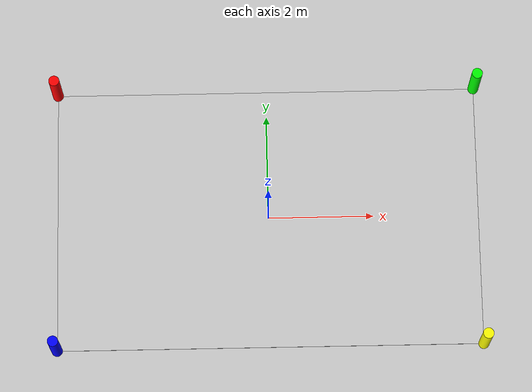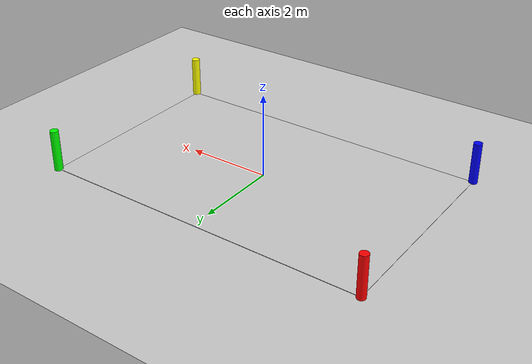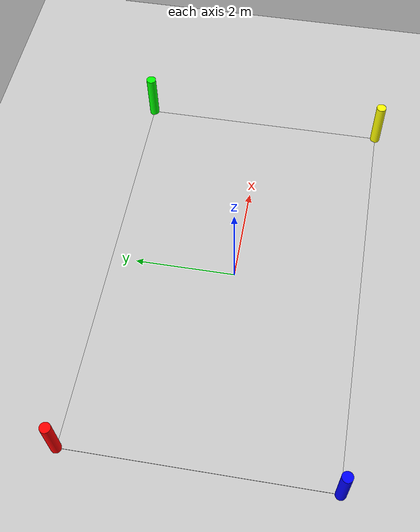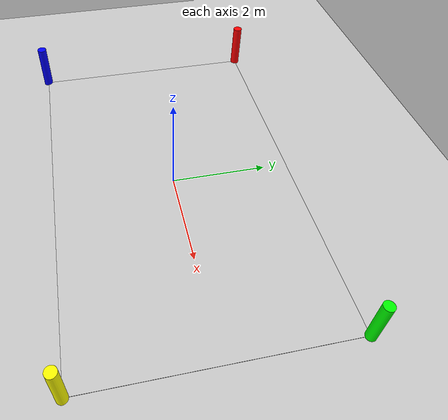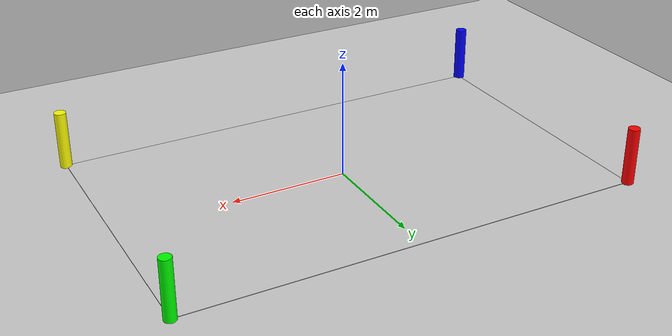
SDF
<?xml version="1.0" ?>
<sdf version="1.6">
  <world name="default">

    <!-- Include Ground Plane -->
    <include>
      <uri>model://ground_plane</uri>
    </include>

    <!-- Include Sun -->
    <include>
      <uri>model://sun</uri>
    </include>

    <!-- Room (for visualization purposes, just a floor box) -->
    <model name="room_floor">
      <static>true</static>
      <link name="floor_link">
        <collision name="collision">
          <geometry>
            <box>
              <size>8 5 0.01</size> <!-- 8m x 5m room -->
            </box>
          </geometry>
        </collision>
        <visual name="visual">
          <geometry>
            <box>
              <size>8 5 0.01</size>
            </box>
          </geometry>
          <material>
            <ambient>0.8 0.8 0.8 1</ambient>
            <diffuse>0.8 0.8 0.8 1</diffuse>
          </material>
        </visual>
      </link>
      <pose>0 0 0.005 0 0 0</pose> <!-- Slightly above ground -->
    </model>

    <!-- Anchor at Front-Left Corner -->
    <model name="anchor_1">
      <static>true</static>
      <link name="link">
        <visual name="visual">
          <geometry>
            <cylinder>
              <radius>0.1</radius>
              <length>1</length>
            </cylinder>
          </geometry>
          <material>
            <ambient>1 0 0 1</ambient>
          </material>
        </visual>
      </link>
      <pose>-4 2.5 0.5 0 0 0</pose>
    </model>

    <!-- Anchor at Front-Right Corner -->
    <model name="anchor_2">
      <static>true</static>
      <link name="link">
        <visual name="visual">
          <geometry>
            <cylinder>
              <radius>0.1</radius>
              <length>1</length>
            </cylinder>
          </geometry>
          <material>
            <ambient>0 1 0 1</ambient>
          </material>
        </visual>
      </link>
      <pose>4 2.5 0.5 0 0 0</pose>
    </model>

    <!-- Anchor at Rear-Left Corner -->
    <model name="anchor_3">
      <static>true</static>
      <link name="link">
        <visual name="visual">
          <geometry>
            <cylinder>
              <radius>0.1</radius>
              <length>1</length>
            </cylinder>
          </geometry>
          <material>
            <ambient>0 0 1 1</ambient>
          </material>
        </visual>
      </link>
      <pose>-4 -2.5 0.5 0 0 0</pose>
    </model>

    <!-- Anchor at Rear-Right Corner -->
    <model name="anchor_4">
      <static>true</static>
      <link name="link">
        <visual name="visual">
          <geometry>
            <cylinder>
              <radius>0.1</radius>
              <length>1</length>
            </cylinder>
          </geometry>
          <material>
            <ambient>1 1 0 1</ambient>
          </material>
        </visual>
      </link>
      <pose>4 -2.5 0.5 0 0 0</pose>
    </model>

  </world>
</sdf>
